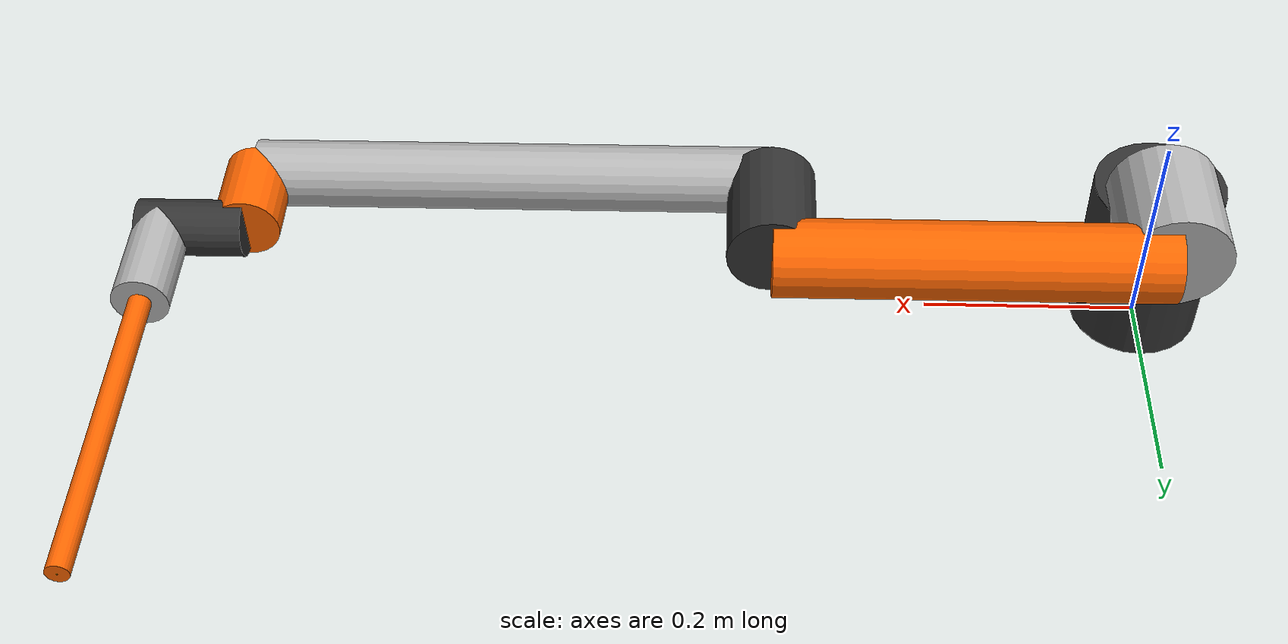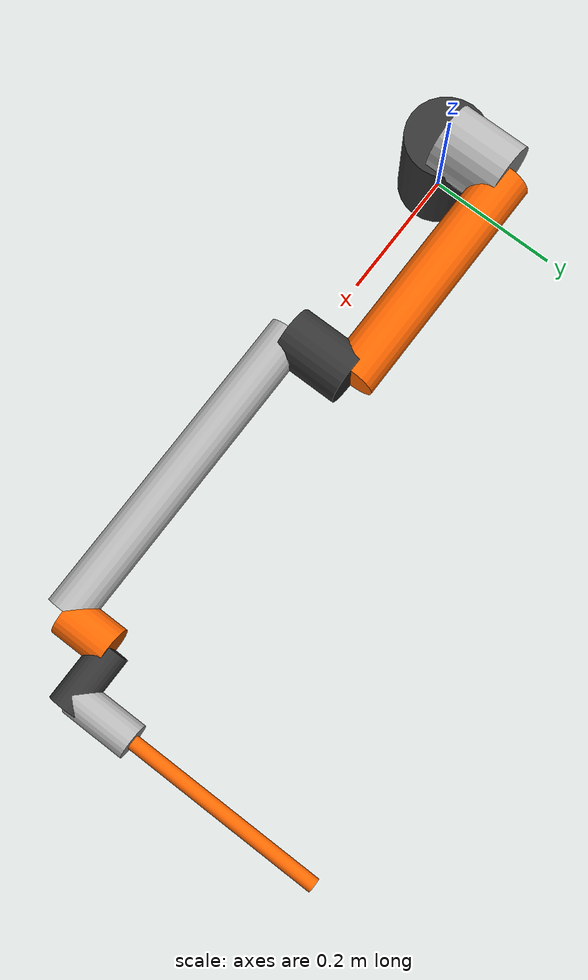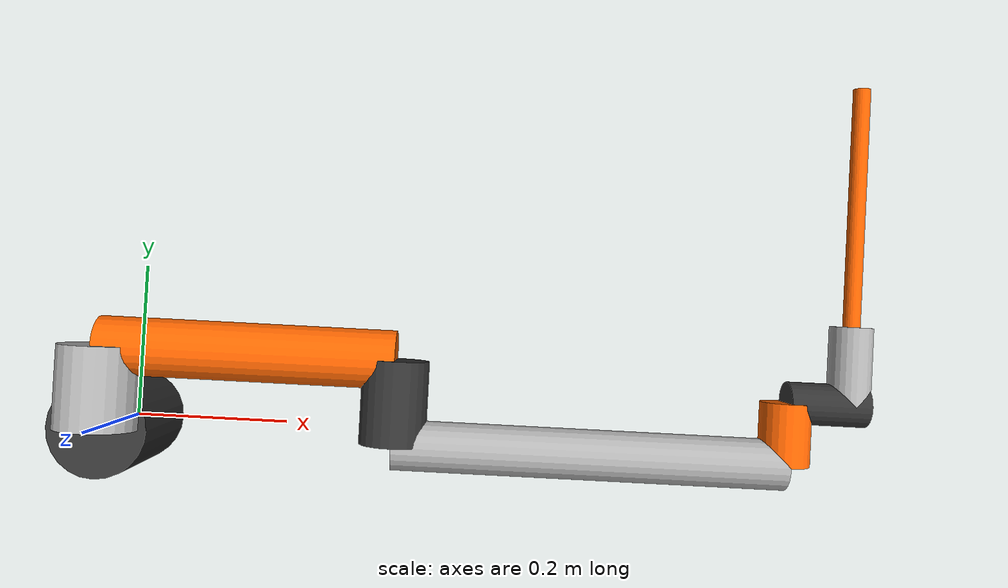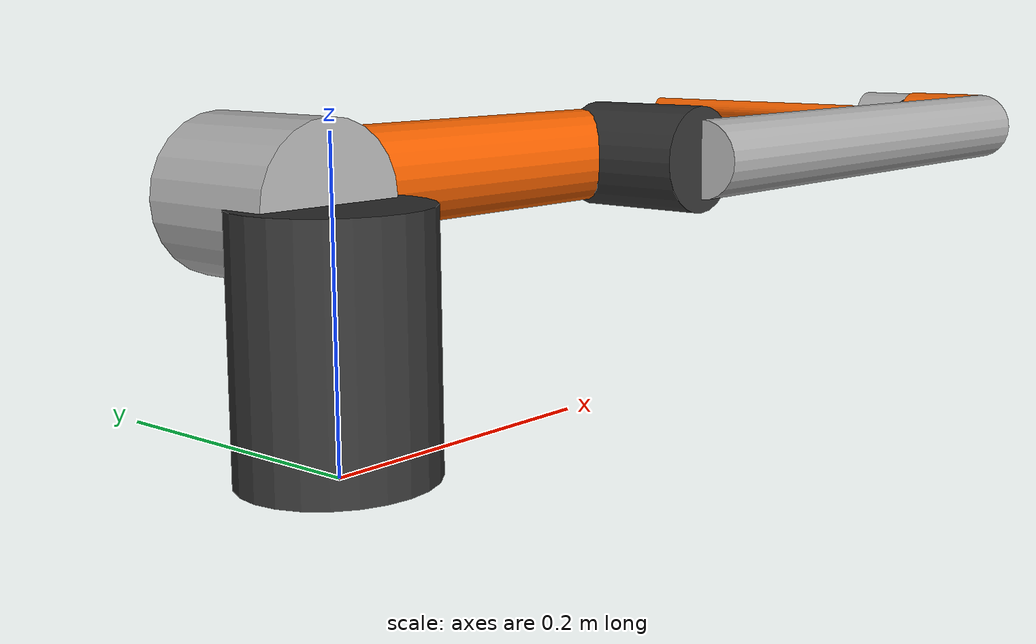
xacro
<?xml version="1.0"?>
<robot xmlns:xacro="http://www.ros.org/wiki/xacro" name="custom_arm">
    <xacro:arg name="initial_positions_file" default="initial_positions.yaml" />

    <!-- Import custom_arm urdf file -->
    <xacro:include filename="$(find aesir_robot_description)/urdf/arm.urdf.xacro" />

    <!-- Import control_xacro -->
    <xacro:include filename="custom_arm.ros2_control.xacro" />

    <xacro:custom_arm_ros2_control name="FakeSystem" initial_positions_file="$(arg initial_positions_file)"/>

</robot>

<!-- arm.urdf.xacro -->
<robot name="custom_arm" xmlns:xacro="http://ros.org/wiki/xacro">

  <!-- ================= DIMENSIONES ================= -->
  <xacro:property name="H_BASE" value="0.15830"/>
  <xacro:property name="OFF_SHOULDER" value="0.10030"/>
  <xacro:property name="L_UPPER" value="0.35316"/>
  <xacro:property name="OFF_ELBOW" value="-0.10030"/>
  <xacro:property name="L_FORE" value="0.46600"/>
  <xacro:property name="L_WRIST1" value="0.07400"/>
  <xacro:property name="L_WRIST_END" value="0.09350"/>
  <xacro:property name="L_TOOL" value="0.28450"/>

  <!-- ================= MATERIALES ================= -->
  <material name="gray"><color rgba="0.7 0.7 0.7 1.0"/></material>
  <material name="orange"><color rgba="1.0 0.4 0.0 1.0"/></material>
  <material name="black"><color rgba="0.2 0.2 0.2 1.0"/></material>

  <!-- ================= BASE ================= -->
  <link name="world">
    <visual>
      <geometry>
        <box size="0.001 0.001 0.001"/>
      </geometry>
    </visual>
  </link>

  <joint name="world_to_base" type="fixed">
    <parent link="world"/>
    <child link="base_link"/>
    <origin xyz="0 0 0" rpy="0 0 0"/>
  </joint>

  <link name="base_link">
    <visual>
      <origin xyz="0 0 ${H_BASE/2}" rpy="0 0 0"/>
      <geometry><cylinder radius="0.06" length="${H_BASE}"/></geometry>
      <material name="black"/>
    </visual>
    <collision>
      <origin xyz="0 0 ${H_BASE/2}" rpy="0 0 0"/>
      <geometry><cylinder radius="0.06" length="${H_BASE}"/></geometry>
    </collision>
  </link>

  <!-- ================= JOINT 1 ================= -->
  <joint name="joint_1" type="revolute">
    <parent link="base_link"/>
    <child link="link_1"/>
    <origin xyz="0 0 ${H_BASE}" rpy="0 0 0"/>
    <axis xyz="0 0 1"/>
    <limit lower="-3.14" upper="3.14" effort="150.0" velocity="3.14"/>
  </joint>

  <link name="link_1">
    <visual>
      <origin xyz="0 ${OFF_SHOULDER/2} 0" rpy="${pi/2} 0 0"/>
      <geometry><cylinder radius="0.05" length="${OFF_SHOULDER}"/></geometry>
      <material name="gray"/>
    </visual>
    <collision>
      <origin xyz="0 ${OFF_SHOULDER/2} 0" rpy="${pi/2} 0 0"/>
      <geometry><cylinder radius="0.05" length="${OFF_SHOULDER}"/></geometry>
    </collision>
  </link>

  <!-- ================= JOINT 2 ================= -->
  <joint name="joint_2" type="revolute">
    <parent link="link_1"/>
    <child link="link_2"/>
    <origin xyz="0 ${OFF_SHOULDER} 0" rpy="0 0 0"/>
    <axis xyz="0 1 0"/>
    <limit lower="-3.14" upper="3.14" effort="150.0" velocity="3.14"/>
  </joint>

  <link name="link_2">
    <visual>
      <origin xyz="${L_UPPER/2} 0 0" rpy="0 ${pi/2} 0"/>
      <geometry><cylinder radius="0.035" length="${L_UPPER}"/></geometry>
      <material name="orange"/>
    </visual>
    <collision>
      <origin xyz="${L_UPPER/2} 0 0" rpy="0 ${pi/2} 0"/>
      <geometry><cylinder radius="0.035" length="${L_UPPER}"/></geometry>
    </collision>
    <visual>
      <origin xyz="${L_UPPER} ${OFF_ELBOW/2} 0" rpy="${pi/2} 0 0"/>
      <geometry><cylinder radius="0.04" length="${-OFF_ELBOW}"/></geometry>
      <material name="black"/>
    </visual>
    <collision>
      <origin xyz="${L_UPPER} ${OFF_ELBOW/2} 0" rpy="${pi/2} 0 0"/>
      <geometry><cylinder radius="0.04" length="${-OFF_ELBOW}"/></geometry>
    </collision>
  </link>

  <!-- ================= JOINT 3 ================= -->
  <joint name="joint_3" type="revolute">
    <parent link="link_2"/>
    <child link="link_3"/>
    <origin xyz="${L_UPPER} ${OFF_ELBOW} 0" rpy="0 0 0"/>
    <axis xyz="0 1 0"/>
    <limit lower="-3.14" upper="3.14" effort="150.0" velocity="3.14"/>
  </joint>

  <link name="link_3">
    <visual>
      <origin xyz="${L_FORE/2} 0 0" rpy="0 ${pi/2} 0"/>
      <geometry><cylinder radius="0.03" length="${L_FORE}"/></geometry>
      <material name="gray"/>
    </visual>
    <collision>
      <origin xyz="${L_FORE/2} 0 0" rpy="0 ${pi/2} 0"/>
      <geometry><cylinder radius="0.03" length="${L_FORE}"/></geometry>
    </collision>
    <visual>
      <origin xyz="${L_FORE} ${L_WRIST1/2} 0" rpy="${pi/2} 0 0"/>
      <geometry><cylinder radius="0.03" length="${L_WRIST1}"/></geometry>
      <material name="orange"/>
    </visual>
    <collision>
      <origin xyz="${L_FORE} ${L_WRIST1/2} 0" rpy="${pi/2} 0 0"/>
      <geometry><cylinder radius="0.03" length="${L_WRIST1}"/></geometry>
    </collision>
  </link>

  <!-- ================= JOINT 4 ================= -->
  <joint name="joint_4" type="revolute">
    <parent link="link_3"/>
    <child link="link_4"/>
    <origin xyz="${L_FORE} ${L_WRIST1} 0" rpy="0 0 0"/>
    <axis xyz="0 1 0"/>
    <limit lower="-3.14" upper="3.14" effort="50.0" velocity="3.14"/>
  </joint>

  <link name="link_4">
    <visual>
      <origin xyz="${L_WRIST_END/2} 0 0" rpy="0 ${pi/2} 0"/>
      <geometry><cylinder radius="0.025" length="${L_WRIST_END}"/></geometry>
      <material name="black"/>
    </visual>
    <collision>
      <origin xyz="${L_WRIST_END/2} 0 0" rpy="0 ${pi/2} 0"/>
      <geometry><cylinder radius="0.025" length="${L_WRIST_END}"/></geometry>
    </collision>
  </link>

  <!-- ================= JOINT 5 ================= -->
  <joint name="joint_5" type="revolute">
    <parent link="link_4"/>
    <child link="link_5"/>
    <origin xyz="${L_WRIST1} 0 0" rpy="0 0 0"/>
    <axis xyz="1 0 0"/>
    <limit lower="-3.14" upper="3.14" effort="50.0" velocity="3.14"/>
  </joint>

  <link name="link_5">
    <visual>
      <origin xyz="0 ${L_WRIST_END/2} 0" rpy="${pi/2} 0 0"/>
      <geometry><cylinder radius="0.025" length="${L_WRIST_END}"/></geometry>
      <material name="gray"/>
    </visual>
    <collision>
      <origin xyz="0 ${L_WRIST_END/2} 0" rpy="${pi/2} 0 0"/>
      <geometry><cylinder radius="0.025" length="${L_WRIST_END}"/></geometry>
    </collision>
  </link>

  <!-- ================= JOINT 6 ================= -->
  <joint name="joint_6" type="revolute">
    <parent link="link_5"/>
    <child link="link_6"/>
    <origin xyz="0 ${L_WRIST_END} 0" rpy="0 0 0"/>
    <axis xyz="0 1 0"/>
    <limit lower="-3.14" upper="3.14" effort="50.0" velocity="3.14"/>
  </joint>

  <link name="link_6">
    <visual>
      <origin xyz="0 ${L_TOOL/2} 0" rpy="${-pi/2} 0 0"/>
      <geometry><cylinder radius="0.01" length="${L_TOOL}"/></geometry>
      <material name="orange"/>
    </visual>
    <collision>
      <origin xyz="0 ${L_TOOL/2} 0" rpy="${-pi/2} 0 0"/>
      <geometry><cylinder radius="0.01" length="${L_TOOL-L_WRIST_END}"/></geometry>
    </collision>
  </link>

  <!-- TOOL -->
  <joint name="joint_tool" type="fixed">
    <parent link="link_6"/>
    <child link="tool_link"/>
    <origin xyz="0 ${L_TOOL} 0" rpy="0 0 0"/>
  </joint>

  <link name="tool_link">
    <visual>
      <geometry>
        <box size="0.001 0.001 0.001"/>
      </geometry>
    </visual>
  </link>

</robot>
